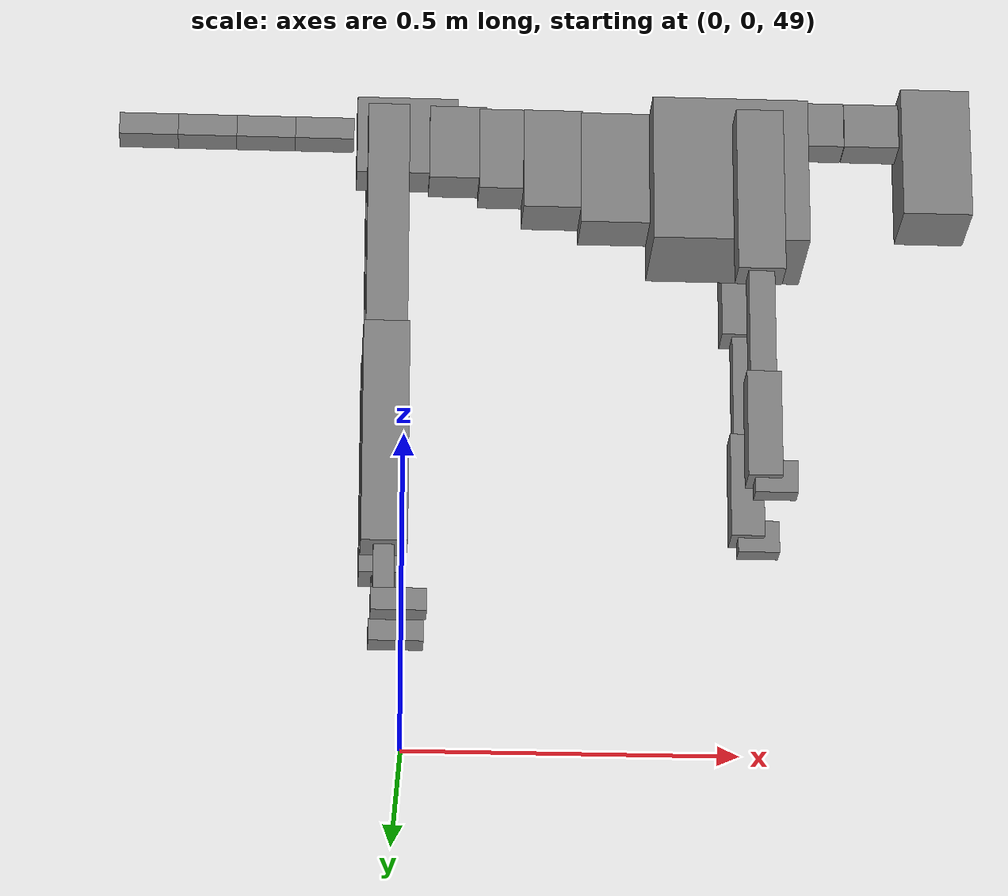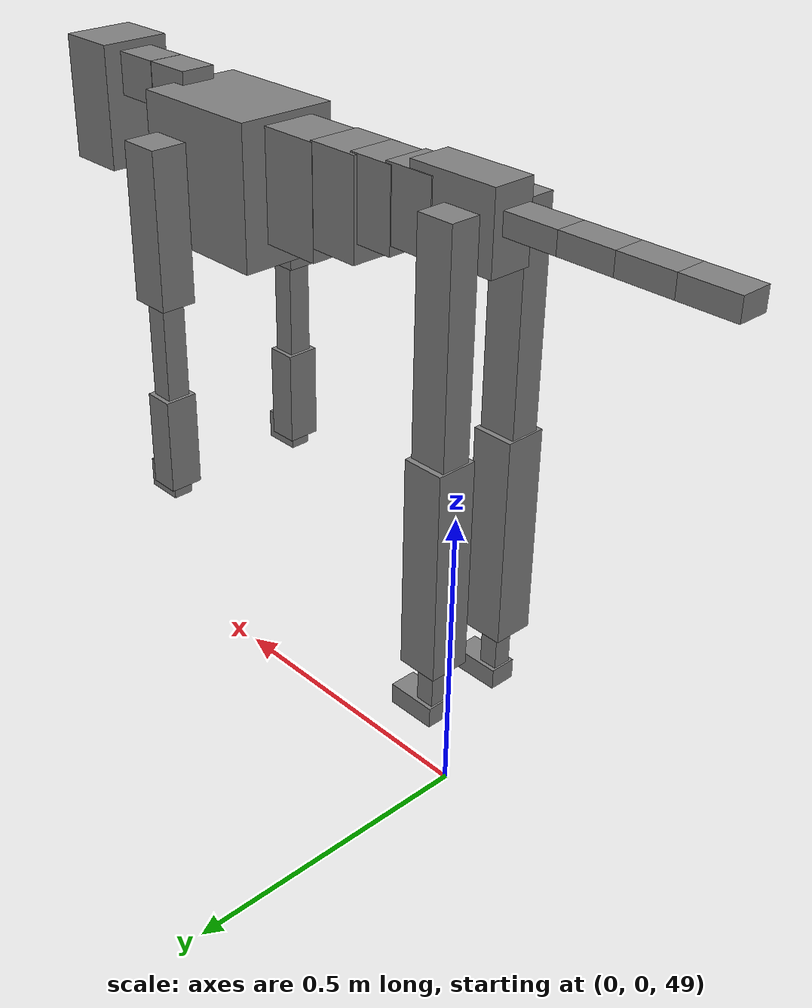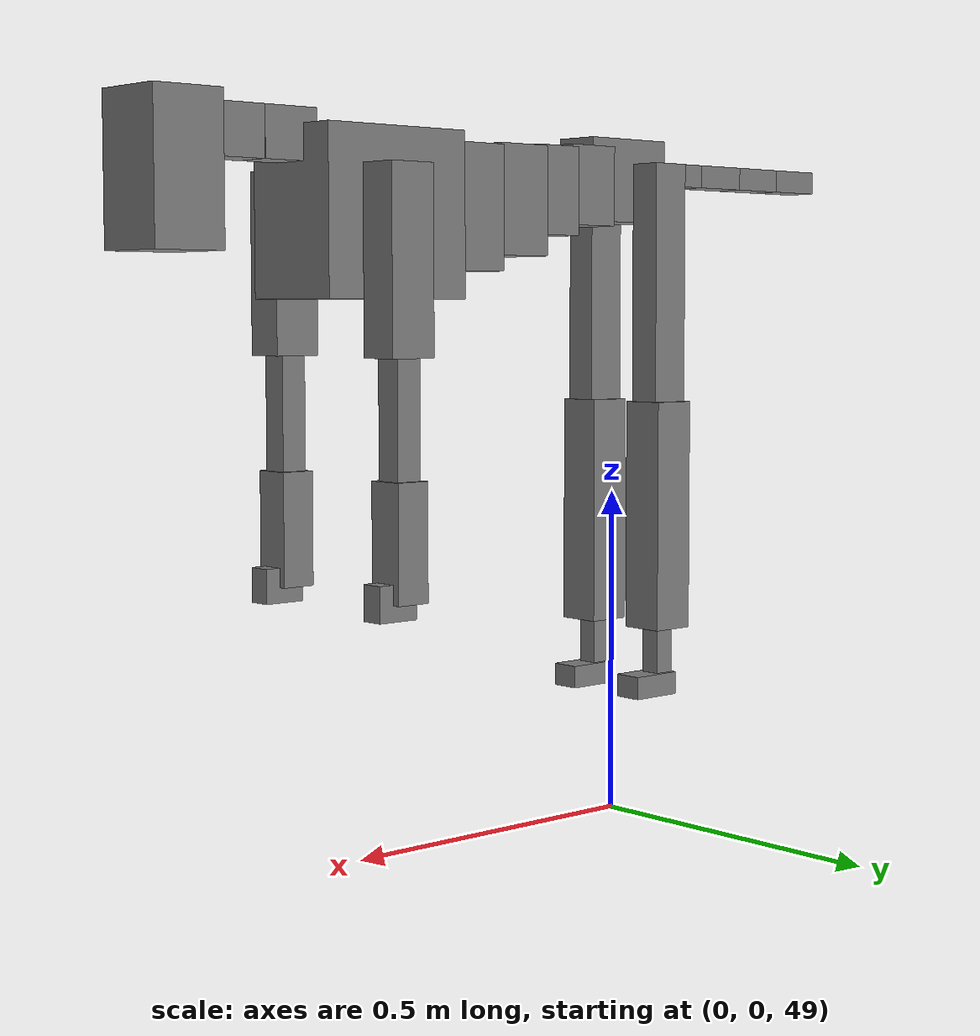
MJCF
<mujoco model="dog">

    <default>
        <joint armature="0.02" stiffness="1" damping="0.2" limited="true"/>
        <geom condim="3" friction="1 0.05 0.05" margin="0.01"/>
        <motor ctrllimited="true" ctrlrange="-1.0 1.0" forcelimited="true" gear="50"/>
    </default>

    <compiler inertiafromgeom="true" angle="radian"/>

    <option timestep="0.016" iterations="50" tolerance="1e-10" solver="Newton" jacobian="dense" cone="pyramidal"/>

    <size nconmax="20000" njmax="60000" nstack="5000000"/>
    <visual>
        <map force="0.1" zfar="30"/>
        <rgba haze="0.15 0.25 0.35 1"/>
        <quality shadowsize="2048"/>
        <global offwidth="800" offheight="800"/>
    </visual>

    <asset>
        <texture type="skybox" builtin="gradient" rgb1="0.3 0.5 0.7" rgb2="0 0 0" width="512" height="512"/>
        <texture name="texplane" type="2d" builtin="checker" rgb1=".2 .3 .4" rgb2=".1 0.15 0.2" width="512" height="512"
                 mark="cross" markrgb=".8 .8 .8"/>
        <texture name="texgeom" type="cube" builtin="flat" mark="cross" width="127" height="1278" rgb1="0.8 0.6 0.4"
                 rgb2="0.8 0.6 0.4" markrgb="1 1 1" random="0.01"/>

        <material name="matplane" reflectance="0.3" texture="texplane" texrepeat="1 1" texuniform="true"/>
        <material name="matgeom" texture="texgeom" texuniform="true" rgba="0.8 0.6 .4 1"/>
    </asset>

    <worldbody>
        <geom name="floor" pos="0 0 0" size="0 0 .25" type="plane" material="matplane" condim="3"/>

        <light directional="false" diffuse=".2 .2 .2" specular="0 0 0" pos="0 0 5" dir="0 0 -1" castshadow="false"/>
        <light mode="targetbodycom" target="torso" directional="false" diffuse=".8 .8 .8" specular="0.3 0.3 0.3"
               pos="0 0 4.0" dir="0 0 -1"/>

        <body name="root" pos="0 0 50">
            <freejoint name="root_1"/>
            <geom type="box" pos="0 0 -0.02" size="0.0774  0.0358  0.063" density="2030"/>

            <body name="spine1" pos="0.054 0 0">
                <joint name="spine1_y" axis="0 1 0" range="0 0.7" limited="true"/>
                <geom type="box" pos="0.02375 0 -0.03" size="0.04375  0.0375  0.05985" density="2030"/>

                <body name="spine2" pos="0.0612 0 0">
                    <joint name="spine2_y" axis="0 1 0" range="-0.15 0.15" limited="true"/>
                    <geom type="box" pos="0.03555  0  -0.04" size="0.04055  0.039  0.06615" density="2030"/>

                    <body name="spine3" pos="0.0730 0 0">
                        <joint name="spine3_y" axis="0 1 0" range="-0.15 0.15" limited="true"/>
                        <geom type="box" pos="0.03555  0  -0.057" size="0.04555  0.0445  0.081" density="2030"/>

                        <body name="spine4" pos="0.0780 0 0">
                            <joint name="spine4_y" axis="0 1 0" range="-0.15 0.15" limited="true"/>
                            <geom type="box" pos="0.05265  0  -0.07" size="0.05265  0.045  0.09135" density="2030"/>

                            <body name="torso" pos="0.1082 0 0">
                                <joint name="torso_y" axis="0 1 0" range="-0.15 0.15" limited="true"/>
                                <geom type="box" pos="0.11925  0  -0.085" size="0.11925  0.085  0.11745"
                                      density="2030"/>

                                <body name="neck1" pos="0.2160  0   0.0180">
                                    <joint name="neck1_y" axis="0 1 0" range="-1.2  -1" limited="true"/>
                                    <geom type="box" pos="0.0423  0  0" size="0.0423  0.03  0.036" density="2325"/>

                                    <body name="neck2" pos="0.0853  0  0">
                                        <joint name="neck2_y" axis="0 1 0" range="0.1  0" limited="true"/>
                                        <geom type="box" pos="0.0423  0  0" size="0.0423  0.03  0.036" density="2325"/>

                                        <body name="head" pos="0.0853  0  0">
                                            <joint name="head_y" axis="0 1 0" range="-0.3  -0.2" limited="true"/>
                                            <geom type="box" pos="0.0531  0  -0.055" size="0.0531  0.06  0.1044"
                                                  density="4030"/>

                                        </body>
                                    </body>
                                </body>

                                <body name="front_shoulder" pos="0.156  0   -0.0480">
                                    <joint name="front_shoulder_y" axis="0 1 0" range="-1 1.5" limited="true"/>
                                    <geom type="box" pos="0 0.13 -0.1039" size="0.0358  0.0306  0.1306" density="1158"/>
                                    <geom type="box" pos="0 -0.13 -0.1039" size="0.0358  0.0306  0.1306"
                                          density="1158"/>

                                    <body name="front_elbow" pos="0  0  -0.2079">
                                        <joint name="front_elbow_y" axis="0 1 0" range="-2 0" limited="true"/>
                                        <geom type="box" pos="0 0.13 -0.1026" size="0.0196  0.0201  0.1026"
                                              density="1081"/>
                                        <geom type="box" pos="0 -0.13 -0.1026" size="0.0196  0.0201  0.1026"
                                              density="1081"/>

                                        <body name="front_wrist" pos="0  0  -0.2052">
                                            <joint name="front_wrist_y" axis="0 1 0" range="-0.2 0" limited="true"/>
                                            <geom type="box" pos="0 0.13 -0.0697" size="0.0256  0.0285  0.0829"
                                                  density="1664"/>
                                            <geom type="box" pos="0 -0.13 -0.0697" size="0.0256  0.0285  0.0829"
                                                  density="1664"/>

                                            <body name="front_finger_end" pos="0  0  -0.1395">
                                                <joint name="front_finger_y" axis="0 1 0" range="-0.4 1"
                                                       limited="true"/>
                                                <geom type="box" pos="0.0173  0.13  -0.0103"
                                                      size="0.0317  0.0173  0.0253" density="1515"/>
                                                <geom type="box" pos="0.0173  -0.13  -0.0103"
                                                      size="0.0317  0.0173  0.0253" density="1515"/>

                                            </body>

                                        </body>
                                    </body>
                                </body>

                            </body>
                        </body>
                    </body>
                </body>
            </body>

            <body name="back_hip" pos="-0.03 0 -0.018">
                <joint name="back_hip_y" axis="0 1 0" range="-1.5 0.3" limited="true"/>
                <geom type="box" pos="0 0.07 -0.1776" size="0.0314  0.0247  0.2004" density="1154"/>
                <geom type="box" pos="0 -0.07 -0.1776" size="0.0314  0.0247  0.2004" density="1154"/>

                <body name="back_knee" pos="0  0  -0.3551">
                    <joint name="back_knee_y" axis="0 1 0" range="0 2.8" limited="true"/>
                    <geom type="box" pos="0 0.07 -0.1596" size="0.0346  0.0341  0.1752" density="1227"/>
                    <geom type="box" pos="0 -0.07 -0.1596" size="0.0346  0.0341  0.1752" density="1227"/>

                    <body name="back_ankle" pos="0  0  -0.3192">
                        <joint name="back_ankle_y" axis="0 1 0" range="-2.2 0" limited="true"/>
                        <geom type="box" pos="0 0.07 -0.0503" size="0.0156  0.0156  0.0615" density="1284"/>
                        <geom type="box" pos="0 -0.07 -0.0503" size="0.0156  0.0156  0.0615" density="1284"/>

                        <body name="back_toe_end" pos="0  0  -0.1006">
                            <joint name="back_toe_y" axis="0 1 0" range="-0.4 1" limited="true"/>
                            <geom type="box" pos="0.0226  0.07  -0.0022" size="0.0414  0.0226  0.0172" density="1515"/>
                            <geom type="box" pos="0.0226  -0.07  -0.0022" size="0.0414  0.0226  0.0172" density="1515"/>

                        </body>
                    </body>
                </body>
            </body>

            <body name="tail1" pos="-0.074 0 -0.006">
                <joint name="tail1_y" axis="0 1 0" range="-0.2 0.2" limited="true"/>
                <geom type="box" pos="-0.0536  0  0" size="0.045  0.025  0.0175" density="1587"/>

                <body name="tail2" pos="-0.09 0 0">
                    <joint name="tail2_y" axis="0 1 0" range="-0.2 0.2" limited="true"/>
                    <geom type="box" pos="-0.0536  0  0" size="0.045  0.025  0.0175" density="1587"/>

                    <body name="tail3" pos="-0.09 0 0">
                        <joint name="tail3_y" axis="0 1 0" range="-0.2 0.2" limited="true"/>
                        <geom type="box" pos="-0.0536  0  0" size="0.045  0.025  0.0175" density="1587"/>

                        <body name="tail4" pos="-0.09 0 0">
                            <joint name="tail4_y" axis="0 1 0" range="-0.2 0.2" limited="true"/>
                            <geom type="box" pos="-0.0536  0  0" size="0.045  0.025  0.0175" density="1587"/>

                        </body>
                    </body>
                </body>
            </body>
        </body>
    </worldbody>

    <actuator>
        <motor joint="spine1_y" forcerange="-150 150     "/>
        <motor joint="spine2_y" forcerange="-150 150     "/>
        <motor joint="spine3_y" forcerange="-150 150     "/>
        <motor joint="spine4_y" forcerange="-150 150     "/>
        <motor joint="torso_y" forcerange="-150 150     "/>
        <motor joint="neck1_y" forcerange="-100 100       "/>
        <motor joint="neck2_y" forcerange="-100 100       "/>
        <motor joint="head_y" forcerange="-150 150       "/>
        <motor joint="front_shoulder_y" forcerange="-105.97 198.26"/>
        <motor joint="front_elbow_y" forcerange="-125.03 121.00"/>
        <motor joint="front_wrist_y" forcerange="-106.23 121.73"/>
        <motor joint="front_finger_y" forcerange="-25.66 26.61"/>
        <motor joint="back_hip_y" forcerange="-230.41 298.43"/>
        <motor joint="back_knee_y" forcerange="-309.00 387.51"/>
        <motor joint="back_angle_y" forcerange="-73.16 76.22"/>
        <motor joint="back_toe_y" forcerange="-74.45 26.00"/>
        <motor joint="tail1_y" forcerange="-50 50     "/>
        <motor joint="tail2_y" forcerange="-50 50     "/>
        <motor joint="tail3_y" forcerange="-50 50     "/>
        <motor joint="tail4_y" forcerange="-50 50     "/>
    </actuator>
</mujoco>
